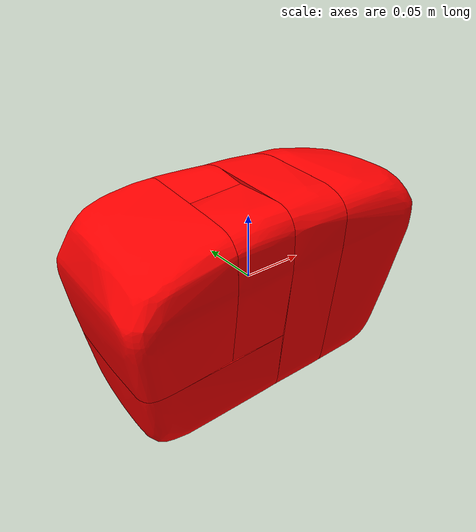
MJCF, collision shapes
<?xml version="1.0" ?>
<mujoco model="bread_1">
	<compiler meshdir="bread_1/meshes" texturedir="bread_1/textures" angle="radian" autolimits="true" balanceinertia="true" boundmass="0.000001" boundinertia="0.000001"/>
	<default>
		<default class="visual">
			<geom contype="0" conaffinity="0"/>
		</default>
		<default class="collision">
			<geom rgba="1.0 0.0 0.0 0.0"/>
		</default>
	</default>
	<asset>
		<mesh name="Bread1" file="obj/Bread1.obj" scale="1.0 1.0 1.0"/>
		<mesh name="Bread1_001" file="stl/Bread1_001.stl" scale="1.0 1.0 1.0"/>
		<mesh name="Bread1_002" file="stl/Bread1_002.stl" scale="1.0 1.0 1.0"/>
		<mesh name="Bread1_003" file="stl/Bread1_003.stl" scale="1.0 1.0 1.0"/>
		<mesh name="Bread1_004" file="stl/Bread1_004.stl" scale="1.0 1.0 1.0"/>
		<mesh name="Bread1_005" file="stl/Bread1_005.stl" scale="1.0 1.0 1.0"/>
		<mesh name="Bread1_006" file="stl/Bread1_006.stl" scale="1.0 1.0 1.0"/>
		<material name="M_Bread1" texture="T_Bread1"/>
		<texture name="T_Bread1" type="2d" file="T_Bread1.png"/>
	</asset>
	<worldbody>
		<body name="bread_1" pos="0.0 0.0 0.0" quat="1.0 0.0 0.0 0.0">
			<inertial mass="0.8408675193786621" pos="-8.59999781823717e-05 -0.0007341864984482527 0.0015975992428138852" quat="-0.7009055018424988 0.7131763100624084 0.006410054862499237 0.008363700471818447" diaginertia="0.0021757064387202263 0.004399170633405447 0.005231454037129879"/>
			<geom name="Bread1" type="mesh" pos="0.0 0.0 0.0" quat="1.0 0.0 0.0 0.0" mesh="Bread1" material="M_Bread1" class="visual"/>
			<geom name="Bread1_001" type="mesh" pos="0.0 0.0 0.0" quat="1.0 0.0 0.0 0.0" mesh="Bread1_001" class="collision"/>
			<geom name="Bread1_002" type="mesh" pos="0.0 0.0 0.0" quat="1.0 0.0 0.0 0.0" mesh="Bread1_002" class="collision"/>
			<geom name="Bread1_003" type="mesh" pos="0.0 0.0 0.0" quat="1.0 0.0 0.0 0.0" mesh="Bread1_003" class="collision"/>
			<geom name="Bread1_004" type="mesh" pos="0.0 0.0 0.0" quat="1.0 0.0 0.0 0.0" mesh="Bread1_004" class="collision"/>
			<geom name="Bread1_005" type="mesh" pos="0.0 0.0 0.0" quat="1.0 0.0 0.0 0.0" mesh="Bread1_005" class="collision"/>
			<geom name="Bread1_006" type="mesh" pos="0.0 0.0 0.0" quat="1.0 0.0 0.0 0.0" mesh="Bread1_006" class="collision"/>
		</body>
	</worldbody>
	<equality/>
</mujoco>
